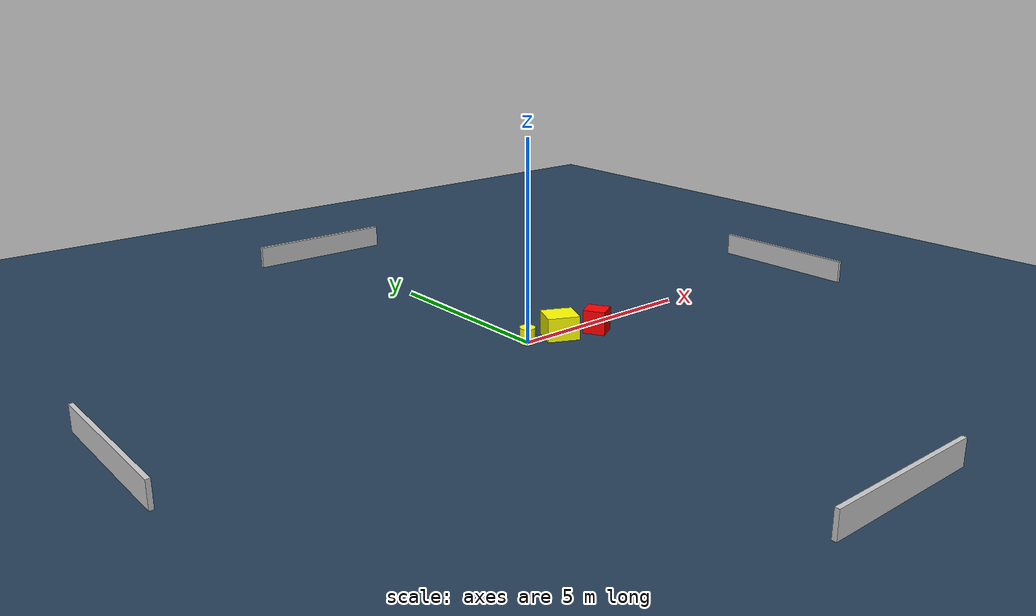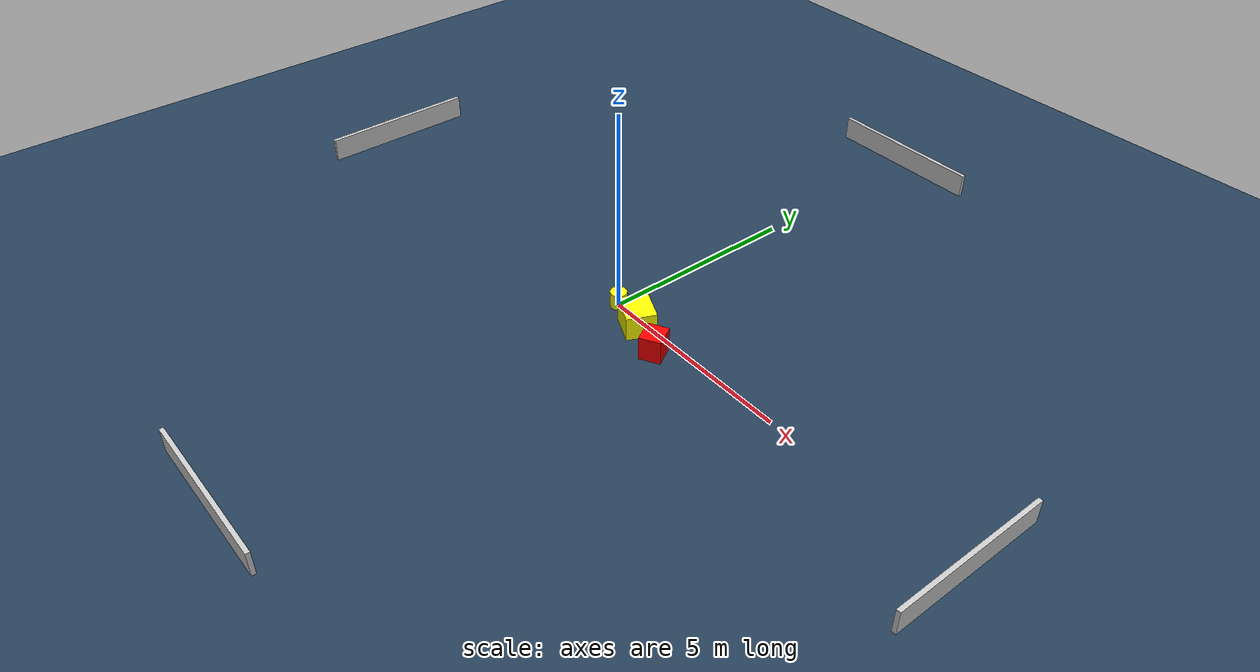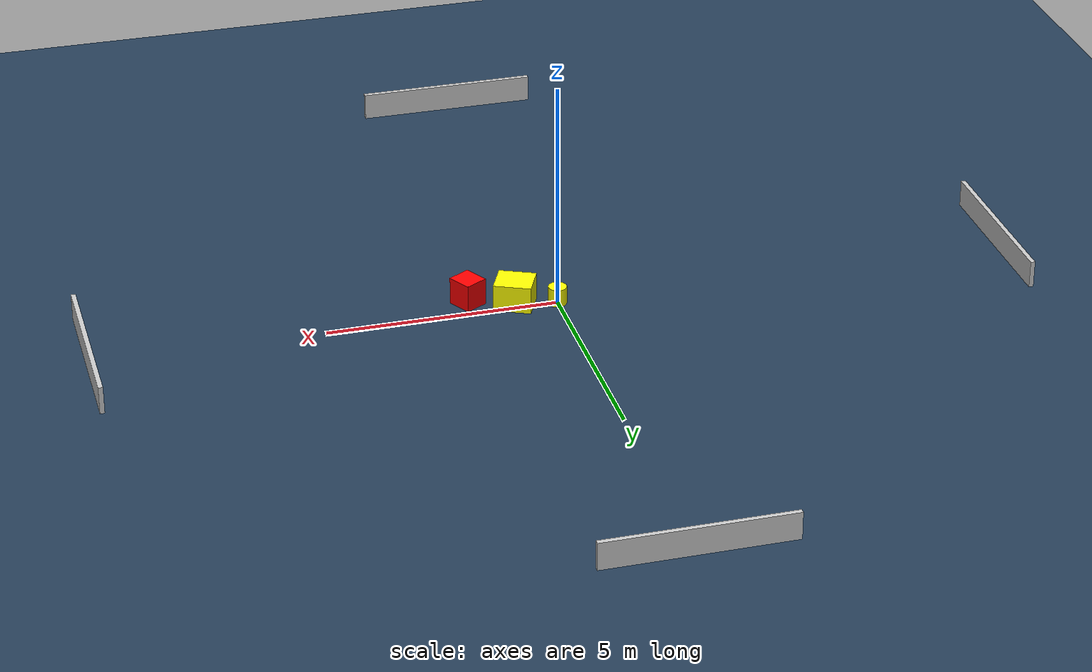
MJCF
<?xml version="1.0" ?>
<mujoco model="generated_environment">
  <option timestep="0.01" integrator="RK4" cone="elliptic"/>
  <default>
    <geom density="1"/>
  </default>
  <asset>
    <texture builtin="gradient" height="3072" name="skybox" rgb1="0.3 0.5 0.7" rgb2="0 0 0" type="skybox" width="512"/>
    <texture builtin="checker" height="300" name="groundplane" rgb1="0.2 0.3 0.4" rgb2="0.1 0.2 0.3" type="2d" width="300"/>
    <material name="groundplane" reflectance="0.2" texrepeat="5 5" texture="groundplane"/>
  </asset>
  <worldbody>
    <light dir="0 0 -1" directional="true" pos="0 0 1.5"/>
    <geom condim="3" friction="0.5 0.005 0.001" material="groundplane" name="floor" pos="0 0 0" size="0 0 0.05" type="plane"/>
    <body name="walls">
      <geom name="wall_1" condim="4" pos="-10.0 0.0 0.3" rgba="0.800000011920929 0.800000011920929 0.800000011920929 1.0" size="0.05 2.0 0.3" type="box"/>
      <geom name="wall_2" condim="4" pos="10.0 0.0 0.3" rgba="0.800000011920929 0.800000011920929 0.800000011920929 1.0" size="0.05 2.0 0.3" type="box"/>
      <geom name="wall_3" condim="4" pos="0.0 -10.0 0.3" rgba="0.800000011920929 0.800000011920929 0.800000011920929 1.0" size="2.0 0.05 0.3" type="box"/>
      <geom name="wall_4" condim="4" pos="0.0 10.0 0.3" rgba="0.800000011920929 0.800000011920929 0.800000011920929 1.0" size="2.0 0.05 0.3" type="box"/>
    </body>
    <body name="robot">
      <joint name="joint_x" type="slide" pos="0 0 0" axis="1 0 0"/>
      <joint name="joint_y" type="slide" pos="0 0 0" axis="0 1 0"/>
      <geom name="robot" type="cylinder" pos="0.0 0.0 0.2" size="0.2 0.2 0.0" mass="5.0" friction="1.0 0.005 0.0001" condim="4" rgba="1.0 1.0 0.0 1.0"/>
    </body>
    <body name="obstacle_1_movable">
      <geom name="obstacle_1_movable" condim="4" pos="0.8877434436488968 -0.1789417056807582 0.3" euler="0 0 65.3413697943886" friction="0.0 0.005 0.001" rgba="1.0 1.0 0.0 1.0" size="0.35891012227235686 0.4066917346852885 0.3" type="box" mass="0.1"/>
      <joint type="free"/>
    </body>
    <body name="obstacle_2_static">
      <geom name="obstacle_2_static" condim="4" pos="1.841058350149648 -0.48908198576362016 0.3" euler="0 0 119.80678809625556" friction="0.0 0.005 0.001" rgba="1.0 0.0 0.0 1.0" size="0.27964162811482995 0.2590071662144324 0.3" type="box"/>
    </body>
  </worldbody>
  <actuator>
    <motor name="actuator_x" joint="joint_x" gear="1" ctrlrange="-1 1"/>
    <motor name="actuator_y" joint="joint_y" gear="1" ctrlrange="-1 1"/>
  </actuator>
</mujoco>
